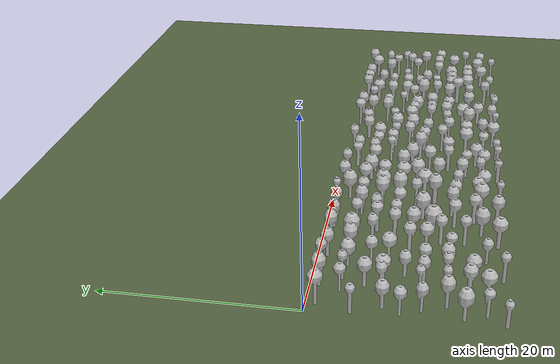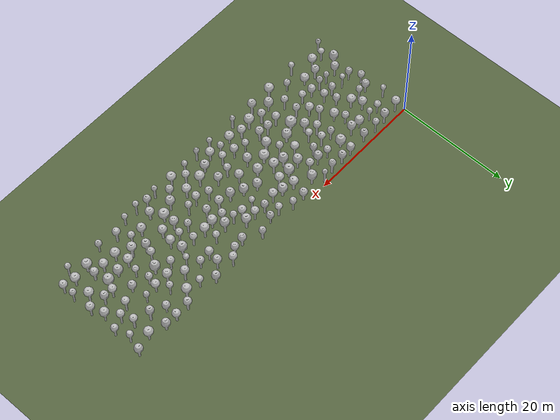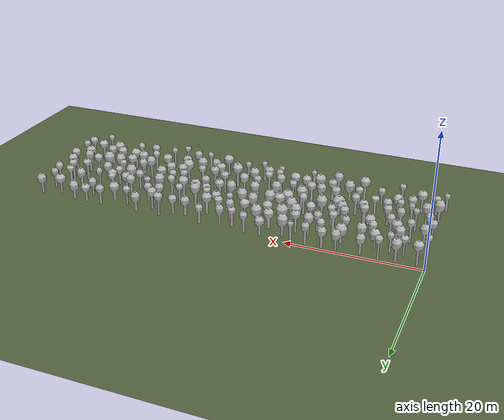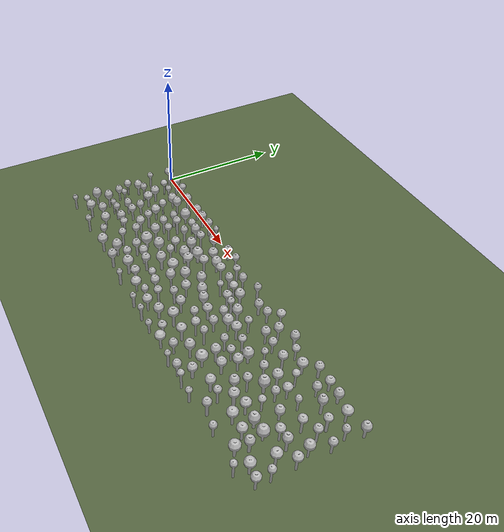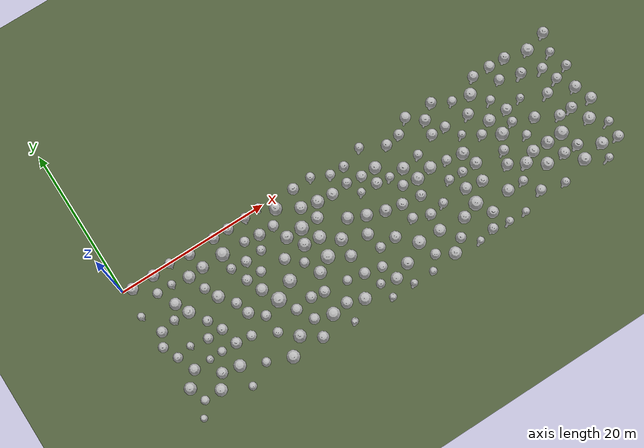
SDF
<?xml version="1.0"?>
<sdf version="1.6">
  <world name="se3_outdoor_bag_reconstruction">
    <light name="sun" type="directional">
      <pose>0 0 30 0 0 0</pose>
      <diffuse>0.85 0.85 0.82 1</diffuse>
      <specular>0.15 0.15 0.15 1</specular>
      <direction>-0.45 0.15 -0.88</direction>
      <cast_shadows>true</cast_shadows>
    </light>
    <model name="ground_plane">
      <static>true</static>
      <pose>30.764604 -9.533221 0.000000 0 0 0</pose>
      <link name="link">
        <collision name="collision">
          <geometry>
            <plane>
              <normal>0 0 1</normal>
              <size>100.000 100.000</size>
            </plane>
          </geometry>
          <surface>
            <friction><ode><mu>1.0</mu><mu2>1.0</mu2></ode></friction>
          </surface>
        </collision>
        <visual name="visual">
          <cast_shadows>false</cast_shadows>
          <geometry>
            <plane>
              <normal>0 0 1</normal>
              <size>100.000 100.000</size>
            </plane>
          </geometry>
          <material>
            <ambient>0.18 0.22 0.14 1</ambient>
            <diffuse>0.32 0.38 0.24 1</diffuse>
          </material>
        </visual>
      </link>
    </model>
    <model name="bag_reconstructed_environment">
      <static>true</static>
      <link name="environment_link">
        <collision name="environment_collision">
          <geometry>
            <mesh><uri>file:///etc/sim2real/simulation/scenes/outdoor_rectangular_forest/meshes/scene.obj</uri></mesh>
          </geometry>
          <max_contacts>20</max_contacts>
        </collision>
        <visual name="environment_visual">
          <cast_shadows>true</cast_shadows>
          <geometry>
            <mesh><uri>file:///etc/sim2real/simulation/scenes/outdoor_rectangular_forest/meshes/scene.obj</uri></mesh>
          </geometry>
        </visual>
      </link>
    </model>
    <plugin name="wind_plugin" filename="libgazebo_wind_plugin.so">
      <frameId>base_link</frameId>
      <robotNamespace/>
      <windVelocityMean>0.000000</windVelocityMean>
      <windVelocityMax>0.000000</windVelocityMax>
      <windVelocityVariance>0</windVelocityVariance>
      <windDirectionMean>1.000000000 0.000000000 0.000000000</windDirectionMean>
      <windDirectionVariance>0</windDirectionVariance>
      <windGustStart>0</windGustStart>
      <windGustDuration>0</windGustDuration>
      <windGustVelocityMean>0</windGustVelocityMean>
      <windGustVelocityMax>0</windGustVelocityMax>
      <windGustVelocityVariance>0</windGustVelocityVariance>
      <windGustDirectionMean>1 0 0</windGustDirectionMean>
      <windGustDirectionVariance>0</windGustDirectionVariance>
      <windPubTopic>world_wind</windPubTopic>
    </plugin>
    <gravity>0 0 -9.8066</gravity>
    <magnetic_field>6e-06 2.3e-05 -4.2e-05</magnetic_field>
    <physics name="default_physics" default="0" type="ode">
      <max_step_size>0.004</max_step_size>
      <real_time_factor>1</real_time_factor>
      <real_time_update_rate>250</real_time_update_rate>
      <ode>
        <solver><type>quick</type><iters>20</iters><sor>1.3</sor></solver>
        <constraints>
          <cfm>0</cfm>
          <erp>0.2</erp>
          <contact_max_correcting_vel>100</contact_max_correcting_vel>
          <contact_surface_layer>0.001</contact_surface_layer>
        </constraints>
      </ode>
    </physics>
    <scene>
      <ambient>0.45 0.45 0.42 1</ambient>
      <background>0.72 0.78 0.82 1</background>
      <shadows>true</shadows>
    </scene>
    <spherical_coordinates>
      <surface_model>EARTH_WGS84</surface_model>
      <latitude_deg>0</latitude_deg>
      <longitude_deg>0</longitude_deg>
      <elevation>0</elevation>
      <heading_deg>0</heading_deg>
    </spherical_coordinates>
  </world>
</sdf>
